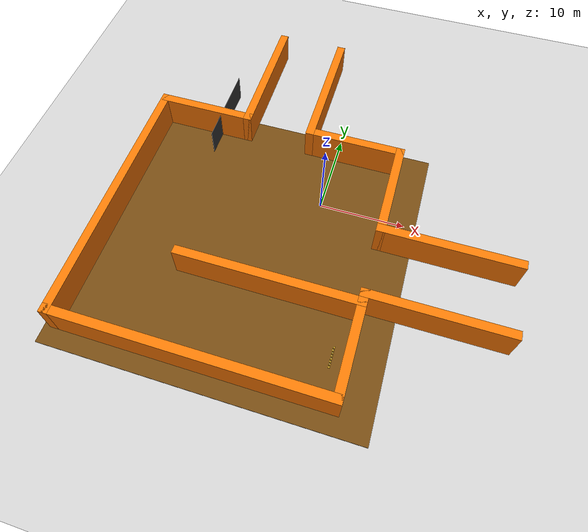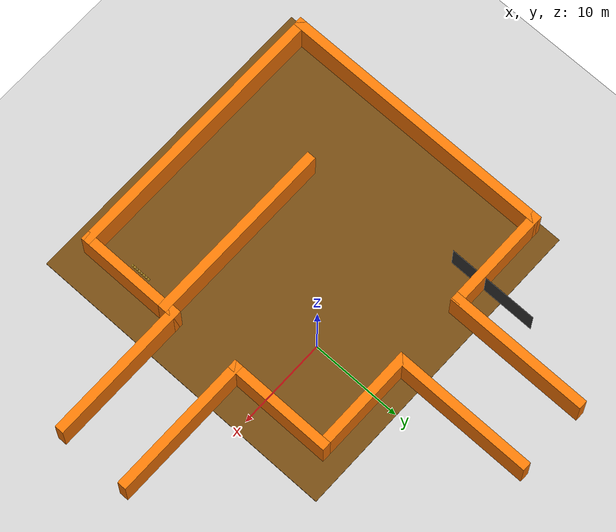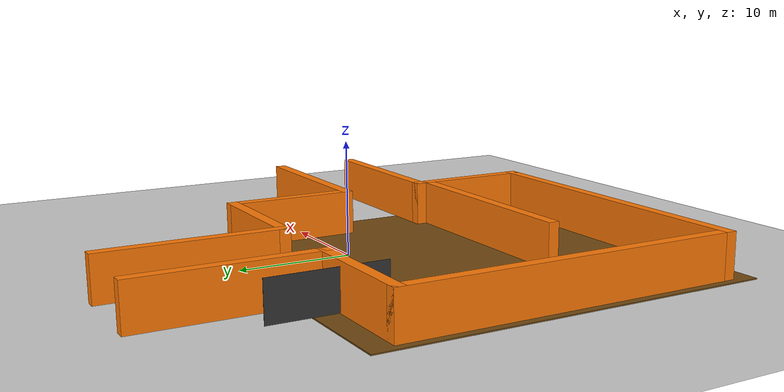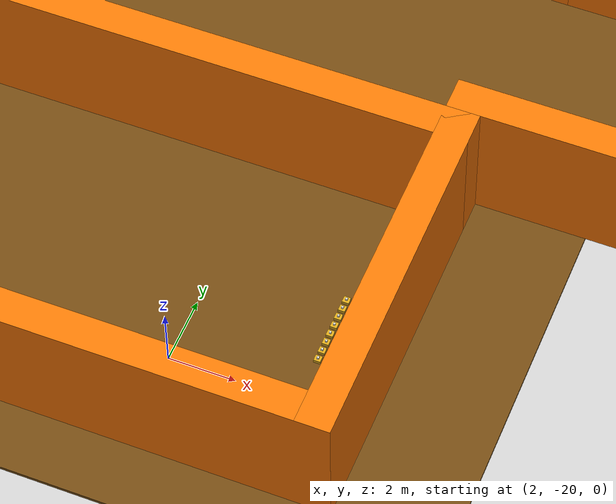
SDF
<sdf version='1.7'>
  <world name='default'>
    <!-- محركات النظام الأساسية -->
    <plugin filename="ignition-gazebo-physics-system" name="ignition::gazebo::systems::Physics"/>
    <plugin filename="ignition-gazebo-user-commands-system" name="ignition::gazebo::systems::UserCommands"/>
    <plugin filename="ignition-gazebo-scene-broadcaster-system" name="ignition::gazebo::systems::SceneBroadcaster"/>

    <!-- محرك الحساسات (تم إبقاؤه مرة واحدة فقط) -->
    <plugin filename="ignition-gazebo-sensors-system" name="ignition::gazebo::systems::Sensors">
      <render_engine>ogre2</render_engine>
    </plugin>

    <light name='sun' type='directional'>
      <cast_shadows>1</cast_shadows>
      <pose>0 0 10 0 -0 0</pose>
      <diffuse>0.8 0.8 0.8 1</diffuse>
      <specular>0.2 0.2 0.2 1</specular>
      <attenuation>
        <range>1000</range>
        <constant>0.9</constant>
        <linear>0.01</linear>
        <quadratic>0.001</quadratic>
      </attenuation>
      <direction>-0.5 0.1 -0.9</direction>
    </light>

    <model name='ground_plane'>
      <static>1</static>
      <link name='link'>
        <collision name='collision'>
          <geometry>
            <plane>
              <normal>0 0 1</normal>
              <size>100 100</size>
            </plane>
          </geometry>
        </collision>
        <visual name='visual'>
          <geometry>
            <plane>
              <normal>0 0 1</normal>
              <size>100 100</size>
            </plane>
          </geometry>
          <material>
            <ambient>0.8 0.8 0.8 1</ambient>
            <diffuse>0.8 0.8 0.8 1</diffuse>
            <specular>0.8 0.8 0.8 1</specular>
          </material>
        </visual>
      </link>
    </model>

    <gravity>0 0 -9.8</gravity>

    <model name='asphalt_plane'>
      <static>1</static>
      <link name='link'>
        <collision name='collision'>
          <geometry>
            <box>
              <size>35 35 0.1</size>
            </box>
          </geometry>
        </collision>
        <visual name='visual'>
          <geometry>
            <box>
              <size>35 35 0.1</size>
            </box>
          </geometry>
          <material>
            <ambient>0.45 0.29 0.07 1</ambient>
            <diffuse>0.45 0.29 0.07 1</diffuse>
          </material>
        </visual>
      </link>
      <pose>-6.2 -7.4 0.05 0 0 0</pose>
    </model>

    <model name='Untitled'>
      <static>1</static>
      <pose>0 0 0.1 0 0 0</pose>

      <link name='Wall_0'>
        <collision name='Wall_0_Collision'>
          <geometry><box><size>12 1 4</size></box></geometry>
          <pose>0 0 2 0 -0 0</pose>
        </collision>
        <visual name='Wall_0_Visual'>
          <pose>0 0 2 0 -0 0</pose>
          <geometry><box><size>12 1 4</size></box></geometry>
          <material>
            <ambient>0.99 0.47 0.02 1</ambient>
            <diffuse>0.99 0.47 0.02 1</diffuse>
          </material>
        </visual>
        <pose>-17 7.5 0 0 -0 0</pose>
      </link>

      <link name='Wall_12'>
        <collision name='Wall_12_Collision'>
          <geometry><box><size>12 1 4</size></box></geometry>
          <pose>0 0 2 0 -0 0</pose>
        </collision>
        <visual name='Wall_12_Visual'>
          <pose>0 0 2 0 -0 0</pose>
          <geometry><box><size>12 1 4</size></box></geometry>
          <material><ambient>0.99 0.47 0.02 1</ambient><diffuse>0.99 0.47 0.02 1</diffuse></material>
        </visual>
        <pose>7.5 -17 0 0 -0 1.5708</pose>
      </link>

      <link name='Wall_14'>
        <collision name='Wall_14_Collision'>
          <geometry><box><size>16 1 4</size></box></geometry>
          <pose>0 0 2 0 -0 0</pose>
        </collision>
        <visual name='Wall_14_Visual'>
          <pose>0 0 2 0 -0 0</pose>
          <geometry><box><size>16 1 4</size></box></geometry>
          <material><ambient>0.99 0.47 0.02 1</ambient><diffuse>0.99 0.47 0.02 1</diffuse></material>
        </visual>
        <pose>15 -3.5 0 0 -0 0</pose>
      </link>

      <link name='Wall_16'>
        <collision name='Wall_16_Collision'>
          <geometry><box><size>16 1 4</size></box></geometry>
          <pose>0 0 2 0 -0 0</pose>
        </collision>
        <visual name='Wall_16_Visual'>
          <pose>0 0 2 0 -0 0</pose>
          <geometry><box><size>16 1 4</size></box></geometry>
          <material><ambient>0.99 0.47 0.02 1</ambient><diffuse>0.99 0.47 0.02 1</diffuse></material>
        </visual>
        <pose>15 -11.5 0 0 -0 0</pose>
      </link>

      <link name='Wall_18'>
        <collision name='Wall_18_Collision'>
          <geometry><box><size>16 1 4</size></box></geometry>
          <pose>0 0 2 0 -0 0</pose>
        </collision>
        <visual name='Wall_18_Visual'>
          <pose>0 0 2 0 -0 0</pose>
          <geometry><box><size>16 1 4</size></box></geometry>
          <material><ambient>0.99 0.47 0.02 1</ambient><diffuse>0.99 0.47 0.02 1</diffuse></material>
        </visual>
        <pose>-3.5 15 0 0 -0 1.5708</pose>
      </link>

      <link name='Wall_2'>
        <collision name='Wall_2_Collision'>
          <geometry><box><size>12 1 4</size></box></geometry>
          <pose>0 0 2 0 -0 0</pose>
        </collision>
        <visual name='Wall_2_Visual'>
          <pose>0 0 2 0 -0 0</pose>
          <geometry><box><size>12 1 4</size></box></geometry>
          <material><ambient>0.99 0.47 0.02 1</ambient><diffuse>0.99 0.47 0.02 1</diffuse></material>
        </visual>
        <pose>2 7.5 0 0 -0 3.14159</pose>
      </link>

      <link name='Wall_20'>
        <collision name='Wall_20_Collision'>
          <geometry><box><size>16 1 4</size></box></geometry>
          <pose>0 0 2 0 -0 0</pose>
        </collision>
        <visual name='Wall_20_Visual'>
          <pose>0 0 2 0 -0 0</pose>
          <geometry><box><size>16 1 4</size></box></geometry>
          <material><ambient>0.99 0.47 0.02 1</ambient><diffuse>0.99 0.47 0.02 1</diffuse></material>
        </visual>
        <pose>-11.5 15 0 0 -0 1.5708</pose>
      </link>

      <link name='Wall_22'>
        <collision name='Wall_22_Collision'>
          <geometry><box><size>21 1 4</size></box></geometry>
          <pose>0 0 2 0 -0 0</pose>
        </collision>
        <visual name='Wall_22_Visual'>
          <pose>0 0 2 0 -0 0</pose>
          <geometry><box><size>21 1 4</size></box></geometry>
          <material><ambient>0.99 0.47 0.02 1</ambient><diffuse>0.99 0.47 0.02 1</diffuse></material>
        </visual>
        <pose>-2.5 -12.5 0 0 -0 3.14159</pose>
      </link>

      <link name='Wall_4'>
        <collision name='Wall_4_Collision'>
          <geometry><box><size>31 1 4</size></box></geometry>
          <pose>0 0 2 0 -0 0</pose>
        </collision>
        <visual name='Wall_4_Visual'>
          <pose>0 0 2 0 -0 0</pose>
          <geometry><box><size>31 1 4</size></box></geometry>
          <material><ambient>0.99 0.47 0.02 1</ambient><diffuse>0.99 0.47 0.02 1</diffuse></material>
        </visual>
        <pose>-22.5 -7.5 0 0 -0 1.5708</pose>
      </link>

      <link name='Wall_6'>
        <collision name='Wall_6_Collision'>
          <geometry><box><size>12 1 4</size></box></geometry>
          <pose>0 0 2 0 -0 0</pose>
        </collision>
        <visual name='Wall_6_Visual'>
          <pose>0 0 2 0 -0 0</pose>
          <geometry><box><size>12 1 4</size></box></geometry>
          <material><ambient>0.99 0.47 0.02 1</ambient><diffuse>0.99 0.47 0.02 1</diffuse></material>
        </visual>
        <pose>7.5 2 0 0 -0 -1.5708</pose>
      </link>

      <link name='Wall_8'>
        <collision name='Wall_8_Collision'>
          <geometry><box><size>31 1 4</size></box></geometry>
          <pose>0 0 2 0 -0 0</pose>
        </collision>
        <visual name='Wall_8_Visual'>
          <pose>0 0 2 0 -0 0</pose>
          <geometry><box><size>31 1 4</size></box></geometry>
          <material><ambient>0.99 0.47 0.02 1</ambient><diffuse>0.99 0.47 0.02 1</diffuse></material>
        </visual>
        <pose>-7.5 -22.5 0 0 -0 3.14159</pose>
      </link>
    </model>

    <model name='bookshelf'>
      <static>1</static>
      <pose>-14.223 8.9 0.15 0 -0 1.5708</pose>
      <link name='link'>
        <visual name='visual_back'>
          <pose>0 0.75 1.75 0 -0 0</pose>
          <geometry><box><size>10 0.02 3.5</size></box></geometry>
          <material><ambient>0.15 0.15 0.15 1</ambient><diffuse>0.2 0.2 0.2 1</diffuse></material>
        </visual>
        </link>
    </model>

    <model name='bookshelf_0'>
      <static>1</static>
      <pose>-14.223 -1.2 0.15 0 -0 1.5708</pose>
      <link name='link'>
        </link>
    </model>

    <scene>
      <ambient>0.4 0.4 0.4 1</ambient>
      <background>0.7 0.7 0.7 1</background>
      <shadows>1</shadows>
    </scene>

    <!-- 8 صناديق مركبة بمسافات منتظمة (فراغ 10 سم) -->

    <!-- الصندوق الأول -->
    <model name='composite_box_1'>
      <pose>5.86 -16.5 0.10 0 0 0</pose>
      <link name='base_link'>
        <visual name='base_visual'>
          <geometry><box><size>0.20 0.20 0.20</size></box></geometry>
          <material><ambient>0.85 0.65 0.1 1</ambient><diffuse>0.85 0.65 0.1 1</diffuse></material>
        </visual>
        <collision name='base_collision'>
          <geometry><box><size>0.20 0.20 0.20</size></box></geometry>
        </collision>
        <inertial>
          <mass>0.5</mass>
          <inertia><ixx>0.001</ixx><iyy>0.001</iyy><izz>0.001</izz></inertia>
        </inertial>
      </link>
      <link name='handle_link'>
        <pose>0 0 0.13 0 0 0</pose>
        <visual name='handle_visual'>
          <geometry><box><size>0.06 0.06 0.06</size></box></geometry>
          <material><ambient>1 1 1 1</ambient><diffuse>1 1 1 1</diffuse></material>
        </visual>
        <collision name='handle_collision'>
          <geometry><box><size>0.06 0.06 0.06</size></box></geometry>
        </collision>
        <inertial>
          <mass>0.1</mass>
          <inertia><ixx>0.0001</ixx><iyy>0.0001</iyy><izz>0.0001</izz></inertia>
        </inertial>
      </link>
      <joint name='handle_joint' type='fixed'>
        <parent>base_link</parent>
        <child>handle_link</child>
      </joint>
    </model>

    <!-- الصندوق الثاني -->
    <model name='composite_box_2'>
      <pose>5.86 -16.8 0.10 0 0 0</pose>
      <link name='base_link'>
        <visual name='base_visual'>
          <geometry><box><size>0.20 0.20 0.20</size></box></geometry>
          <material><ambient>0.85 0.65 0.1 1</ambient><diffuse>0.85 0.65 0.1 1</diffuse></material>
        </visual>
        <collision name='base_collision'>
          <geometry><box><size>0.20 0.20 0.20</size></box></geometry>
        </collision>
        <inertial>
          <mass>0.5</mass>
          <inertia><ixx>0.001</ixx><iyy>0.001</iyy><izz>0.001</izz></inertia>
        </inertial>
      </link>
      <link name='handle_link'>
        <pose>0 0 0.13 0 0 0</pose>
        <visual name='handle_visual'>
          <geometry><box><size>0.06 0.06 0.06</size></box></geometry>
          <material><ambient>1 1 1 1</ambient><diffuse>1 1 1 1</diffuse></material>
        </visual>
        <collision name='handle_collision'>
          <geometry><box><size>0.06 0.06 0.06</size></box></geometry>
        </collision>
        <inertial>
          <mass>0.1</mass>
          <inertia><ixx>0.0001</ixx><iyy>0.0001</iyy><izz>0.0001</izz></inertia>
        </inertial>
      </link>
      <joint name='handle_joint' type='fixed'>
        <parent>base_link</parent>
        <child>handle_link</child>
      </joint>
    </model>

    <!-- الصندوق الثالث -->
    <model name='composite_box_3'>
      <pose>5.86 -17.1 0.10 0 0 0</pose>
      <link name='base_link'>
        <visual name='base_visual'>
          <geometry><box><size>0.20 0.20 0.20</size></box></geometry>
          <material><ambient>0.85 0.65 0.1 1</ambient><diffuse>0.85 0.65 0.1 1</diffuse></material>
        </visual>
        <collision name='base_collision'>
          <geometry><box><size>0.20 0.20 0.20</size></box></geometry>
        </collision>
        <inertial>
          <mass>0.5</mass>
          <inertia><ixx>0.001</ixx><iyy>0.001</iyy><izz>0.001</izz></inertia>
        </inertial>
      </link>
      <link name='handle_link'>
        <pose>0 0 0.13 0 0 0</pose>
        <visual name='handle_visual'>
          <geometry><box><size>0.06 0.06 0.06</size></box></geometry>
          <material><ambient>1 1 1 1</ambient><diffuse>1 1 1 1</diffuse></material>
        </visual>
        <collision name='handle_collision'>
          <geometry><box><size>0.06 0.06 0.06</size></box></geometry>
        </collision>
        <inertial>
          <mass>0.1</mass>
          <inertia><ixx>0.0001</ixx><iyy>0.0001</iyy><izz>0.0001</izz></inertia>
        </inertial>
      </link>
      <joint name='handle_joint' type='fixed'>
        <parent>base_link</parent>
        <child>handle_link</child>
      </joint>
    </model>

    <!-- الصندوق الرابع -->
    <model name='composite_box_4'>
      <pose>5.86 -17.4 0.10 0 0 0</pose>
      <link name='base_link'>
        <visual name='base_visual'>
          <geometry><box><size>0.20 0.20 0.20</size></box></geometry>
          <material><ambient>0.85 0.65 0.1 1</ambient><diffuse>0.85 0.65 0.1 1</diffuse></material>
        </visual>
        <collision name='base_collision'>
          <geometry><box><size>0.20 0.20 0.20</size></box></geometry>
        </collision>
        <inertial>
          <mass>0.5</mass>
          <inertia><ixx>0.001</ixx><iyy>0.001</iyy><izz>0.001</izz></inertia>
        </inertial>
      </link>
      <link name='handle_link'>
        <pose>0 0 0.13 0 0 0</pose>
        <visual name='handle_visual'>
          <geometry><box><size>0.06 0.06 0.06</size></box></geometry>
          <material><ambient>1 1 1 1</ambient><diffuse>1 1 1 1</diffuse></material>
        </visual>
        <collision name='handle_collision'>
          <geometry><box><size>0.06 0.06 0.06</size></box></geometry>
        </collision>
        <inertial>
          <mass>0.1</mass>
          <inertia><ixx>0.0001</ixx><iyy>0.0001</iyy><izz>0.0001</izz></inertia>
        </inertial>
      </link>
      <joint name='handle_joint' type='fixed'>
        <parent>base_link</parent>
        <child>handle_link</child>
      </joint>
    </model>

    <!-- الصندوق الخامس -->
    <model name='composite_box_5'>
      <pose>5.86 -17.7 0.10 0 0 0</pose>
      <link name='base_link'>
        <visual name='base_visual'>
          <geometry><box><size>0.20 0.20 0.20</size></box></geometry>
          <material><ambient>0.85 0.65 0.1 1</ambient><diffuse>0.85 0.65 0.1 1</diffuse></material>
        </visual>
        <collision name='base_collision'>
          <geometry><box><size>0.20 0.20 0.20</size></box></geometry>
        </collision>
        <inertial>
          <mass>0.5</mass>
          <inertia><ixx>0.001</ixx><iyy>0.001</iyy><izz>0.001</izz></inertia>
        </inertial>
      </link>
      <link name='handle_link'>
        <pose>0 0 0.13 0 0 0</pose>
        <visual name='handle_visual'>
          <geometry><box><size>0.06 0.06 0.06</size></box></geometry>
          <material><ambient>1 1 1 1</ambient><diffuse>1 1 1 1</diffuse></material>
        </visual>
        <collision name='handle_collision'>
          <geometry><box><size>0.06 0.06 0.06</size></box></geometry>
        </collision>
        <inertial>
          <mass>0.1</mass>
          <inertia><ixx>0.0001</ixx><iyy>0.0001</iyy><izz>0.0001</izz></inertia>
        </inertial>
      </link>
      <joint name='handle_joint' type='fixed'>
        <parent>base_link</parent>
        <child>handle_link</child>
      </joint>
    </model>

    <!-- الصندوق السادس -->
    <model name='composite_box_6'>
      <pose>5.86 -18.0 0.10 0 0 0</pose>
      <link name='base_link'>
        <visual name='base_visual'>
          <geometry><box><size>0.20 0.20 0.20</size></box></geometry>
          <material><ambient>0.85 0.65 0.1 1</ambient><diffuse>0.85 0.65 0.1 1</diffuse></material>
        </visual>
        <collision name='base_collision'>
          <geometry><box><size>0.20 0.20 0.20</size></box></geometry>
        </collision>
        <inertial>
          <mass>0.5</mass>
          <inertia><ixx>0.001</ixx><iyy>0.001</iyy><izz>0.001</izz></inertia>
        </inertial>
      </link>
      <link name='handle_link'>
        <pose>0 0 0.13 0 0 0</pose>
        <visual name='handle_visual'>
          <geometry><box><size>0.06 0.06 0.06</size></box></geometry>
          <material><ambient>1 1 1 1</ambient><diffuse>1 1 1 1</diffuse></material>
        </visual>
        <collision name='handle_collision'>
          <geometry><box><size>0.06 0.06 0.06</size></box></geometry>
        </collision>
        <inertial>
          <mass>0.1</mass>
          <inertia><ixx>0.0001</ixx><iyy>0.0001</iyy><izz>0.0001</izz></inertia>
        </inertial>
      </link>
      <joint name='handle_joint' type='fixed'>
        <parent>base_link</parent>
        <child>handle_link</child>
      </joint>
    </model>

    <!-- الصندوق السابع -->
    <model name='composite_box_7'>
      <pose>5.86 -18.3 0.10 0 0 0</pose>
      <link name='base_link'>
        <visual name='base_visual'>
          <geometry><box><size>0.20 0.20 0.20</size></box></geometry>
          <material><ambient>0.85 0.65 0.1 1</ambient><diffuse>0.85 0.65 0.1 1</diffuse></material>
        </visual>
        <collision name='base_collision'>
          <geometry><box><size>0.20 0.20 0.20</size></box></geometry>
        </collision>
        <inertial>
          <mass>0.5</mass>
          <inertia><ixx>0.001</ixx><iyy>0.001</iyy><izz>0.001</izz></inertia>
        </inertial>
      </link>
      <link name='handle_link'>
        <pose>0 0 0.13 0 0 0</pose>
        <visual name='handle_visual'>
          <geometry><box><size>0.06 0.06 0.06</size></box></geometry>
          <material><ambient>1 1 1 1</ambient><diffuse>1 1 1 1</diffuse></material>
        </visual>
        <collision name='handle_collision'>
          <geometry><box><size>0.06 0.06 0.06</size></box></geometry>
        </collision>
        <inertial>
          <mass>0.1</mass>
          <inertia><ixx>0.0001</ixx><iyy>0.0001</iyy><izz>0.0001</izz></inertia>
        </inertial>
      </link>
      <joint name='handle_joint' type='fixed'>
        <parent>base_link</parent>
        <child>handle_link</child>
      </joint>
    </model>

    <!-- الصندوق الثامن -->
    <model name='composite_box_8'>
      <pose>5.86 -18.6 0.10 0 0 0</pose>
      <link name='base_link'>
        <visual name='base_visual'>
          <geometry><box><size>0.20 0.20 0.20</size></box></geometry>
          <material><ambient>0.85 0.65 0.1 1</ambient><diffuse>0.85 0.65 0.1 1</diffuse></material>
        </visual>
        <collision name='base_collision'>
          <geometry><box><size>0.20 0.20 0.20</size></box></geometry>
        </collision>
        <inertial>
          <mass>0.5</mass>
          <inertia><ixx>0.001</ixx><iyy>0.001</iyy><izz>0.001</izz></inertia>
        </inertial>
      </link>
      <link name='handle_link'>
        <pose>0 0 0.13 0 0 0</pose>
        <visual name='handle_visual'>
          <geometry><box><size>0.06 0.06 0.06</size></box></geometry>
          <material><ambient>1 1 1 1</ambient><diffuse>1 1 1 1</diffuse></material>
        </visual>
        <collision name='handle_collision'>
          <geometry><box><size>0.06 0.06 0.06</size></box></geometry>
        </collision>
        <inertial>
          <mass>0.1</mass>
          <inertia><ixx>0.0001</ixx><iyy>0.0001</iyy><izz>0.0001</izz></inertia>
        </inertial>
      </link>
      <joint name='handle_joint' type='fixed'>
        <parent>base_link</parent>
        <child>handle_link</child>
      </joint>
    </model>

  </world>
</sdf>
